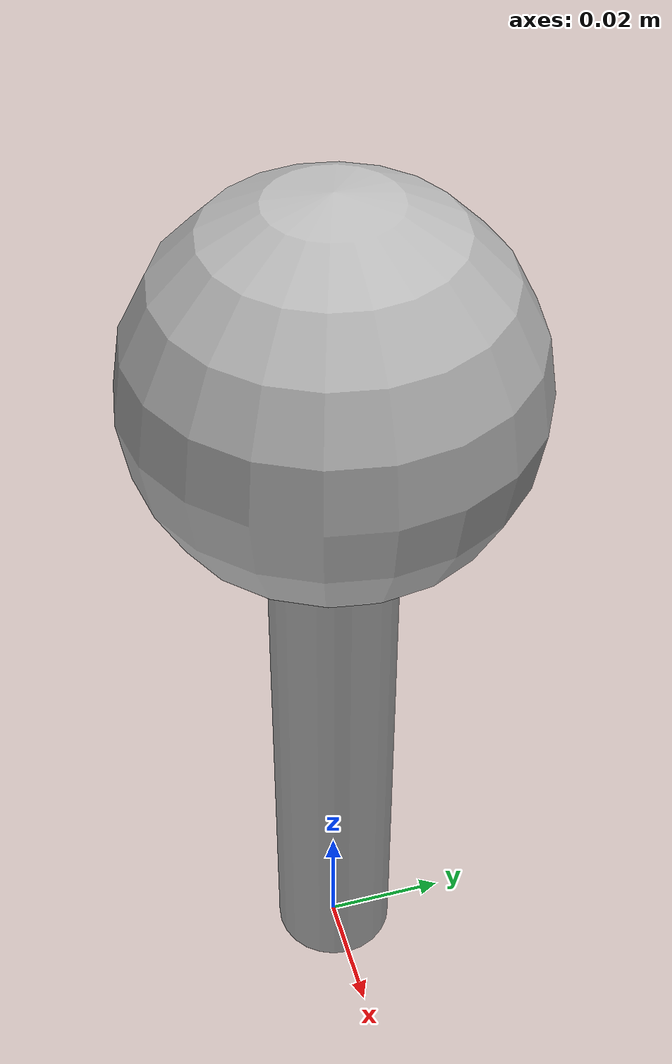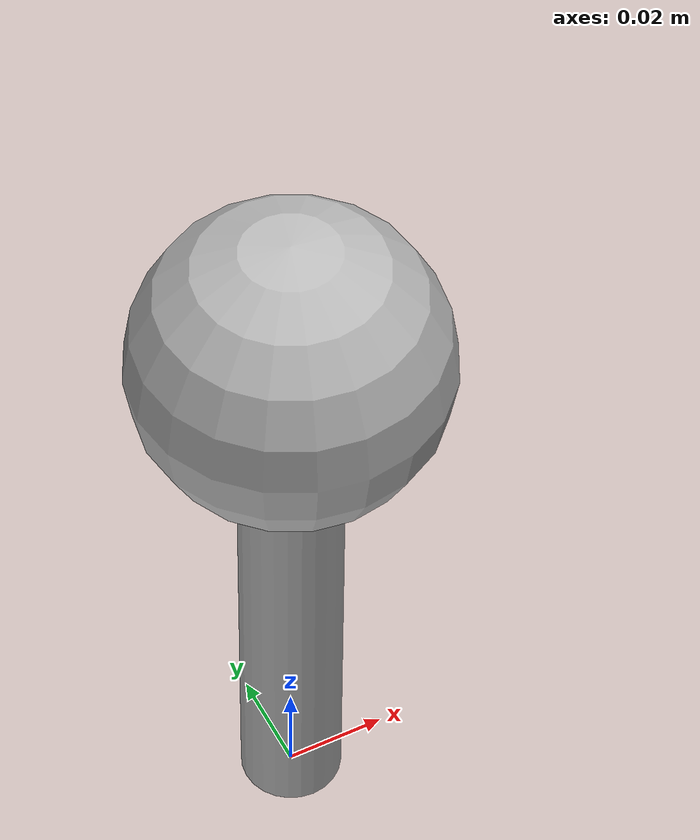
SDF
<?xml version="1.0"?>
<sdf version="1.6">
  <model name="bob">

    <static>true</static>

    <!-- The Shaft of the Bob. -->
    <link name="shaft">

      <pose>0 0 0.05 0 0 0</pose>

      <collision name="shaft_collision">
        <geometry>
          <cylinder>
            <radius>0.01</radius>
            <length>0.10</length>
          </cylinder>
        </geometry>
      </collision>

      <visual name="shaft_visual">
        <geometry>
          <cylinder>
            <radius>0.01</radius>
            <length>0.10</length>
          </cylinder>
        </geometry>
      </visual>
    </link>

    <!-- The Ball of the Bob. -->
    <link name="ball">

      <pose>0 0 0.12 0 0 0</pose>

      <collision name="ball_collision">
        <geometry>
          <sphere><radius>0.03</radius></sphere>
        </geometry>
      </collision>

      <visual name="ball_visual">
        <geometry>
          <sphere><radius>0.03</radius></sphere>
        </geometry>
      </visual>
    </link>

    <!-- Joint -->
    <joint name="joint" type="fixed">
      <parent>shaft</parent>
      <child>ball</child>
    </joint>

  </model>
</sdf>
